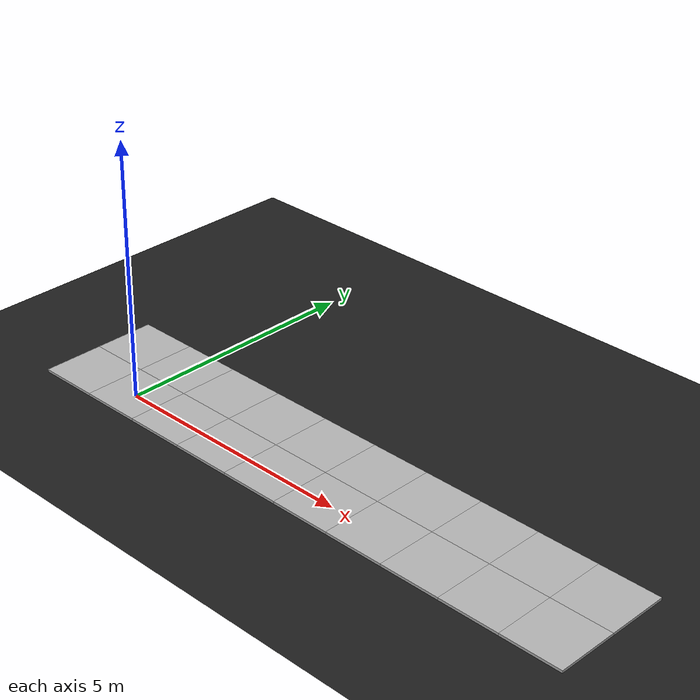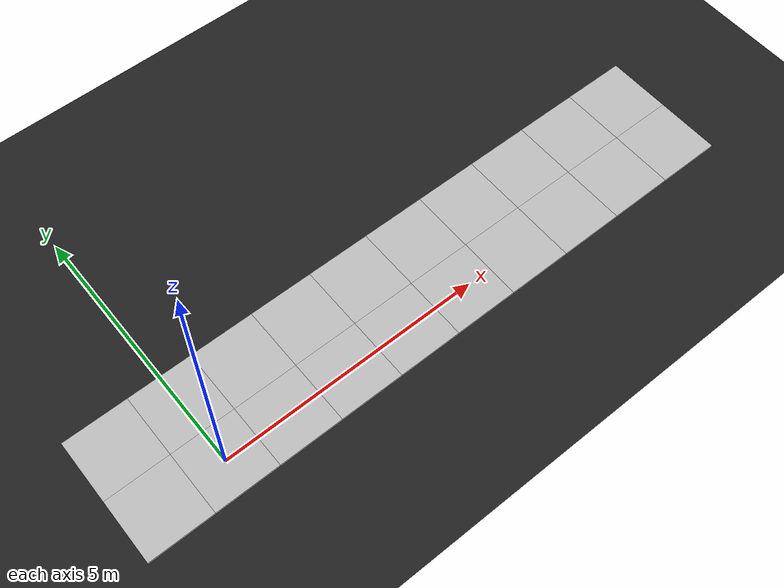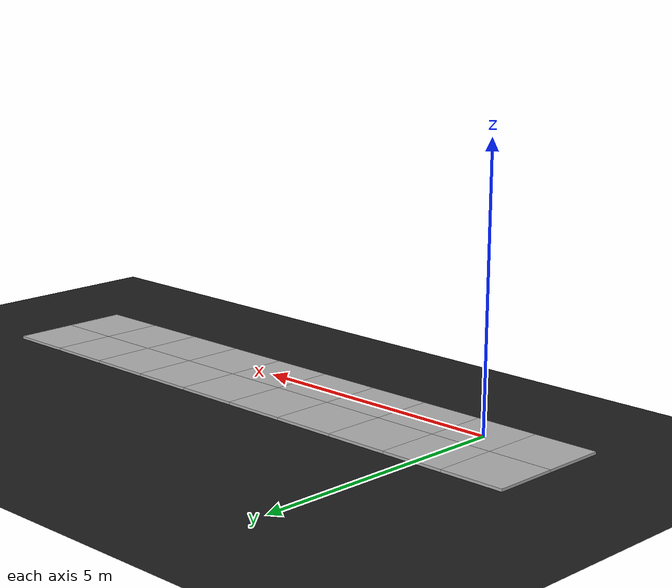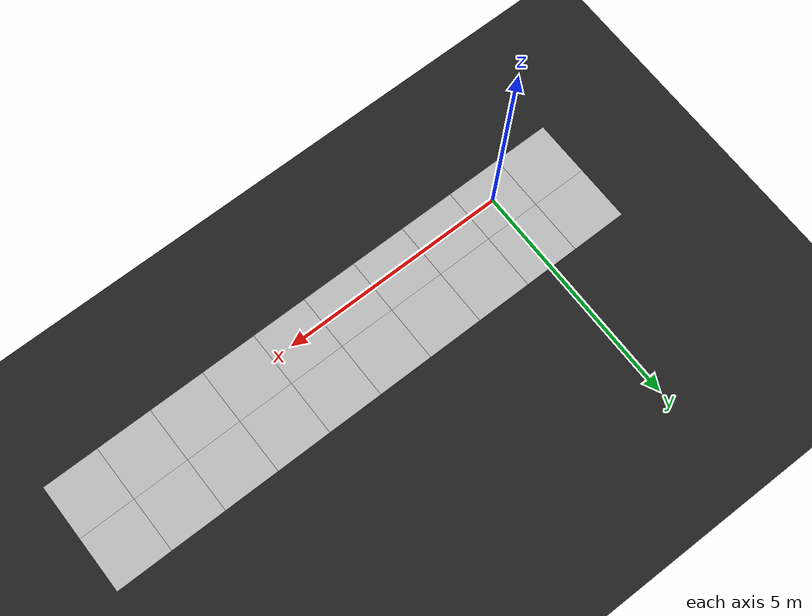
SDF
<?xml version="1.0"?>
<sdf version="1.4">
<world name="raceon_final_race">

  <include>
    <uri>model://sun</uri>
  </include>

  <model name="ground_plane">
    <static>true</static>
    <link name="link">
      <collision name="collision">
        <geometry>
          <plane>
            <normal>0 0 1</normal>
            <size>150 150</size>
          </plane>
        </geometry>
        <surface>
          <friction>
            <ode>
              <mu>100</mu>
              <mu2>50</mu2>
            </ode>
          </friction>
        </surface>
      </collision>
      <visual name="visual">
        <cast_shadows>false</cast_shadows>
        <geometry>
          <plane>
            <normal>0 0 1</normal>
            <size>150 150</size>
          </plane>
        </geometry>
        <material>
          <script>
            <uri>file://media/materials/scripts/gazebo.material</uri>
            <name>Gazebo/FlatBlack</name>
          </script>
        </material>
      </visual>
    </link>
  </model>

  <!-- Track -->
  <include>
    <static>true</static>
    <name>1_1</name>
    <uri>model://racecar_description/models/segment_turn</uri>
    <pose>-1.21 0 0 0 0 -1.57079632679</pose>
  </include>

  <include>
    <static>true</static>
    <name>1_2</name>
    <uri>model://racecar_description/models/segment_straight</uri>
    <pose>0 0 0 0 0 0</pose>
  </include>

  <include>
    <static>true</static>
    <name>1_3</name>
    <uri>model://racecar_description/models/segment_straight</uri>
    <pose>1.21 0 0 0 0 0</pose>
  </include>

  <include>
    <static>true</static>
    <name>1_4</name>
    <uri>model://racecar_description/models/segment_straight</uri>
    <pose>2.42 0 0 0 0 0</pose>
  </include>

  <include>
    <static>true</static>
    <name>1_5</name>
    <uri>model://racecar_description/models/segment_straight</uri>
    <pose>3.63 0 0 0 0 0</pose>
  </include>

  <include>
    <static>true</static>
    <name>1_6</name>
    <uri>model://racecar_description/models/segment_straight</uri>
    <pose>4.84 0 0 0 0 0</pose>
  </include>

  <include>
    <static>true</static>
    <name>1_7</name>
    <uri>model://racecar_description/models/segment_straight</uri>
    <pose>6.05 0 0 0 0 0</pose>
  </include>

  <include>
    <static>true</static>
    <name>1_8</name>
    <uri>model://racecar_description/models/segment_straight</uri>
    <pose>7.26 0 0 0 0 0</pose>
  </include>

  <include>
    <static>true</static>
    <name>1_9</name>
    <uri>model://racecar_description/models/segment_straight</uri>
    <pose>8.47 0 0 0 0 0</pose>
  </include>

  <include>
    <static>true</static>
    <name>1_10</name>
    <uri>model://racecar_description/models/segment_turn</uri>
    <pose>9.68 0 0 0 0 0</pose>
  </include>

  <include>
    <static>true</static>
    <name>2_1</name>
    <uri>model://racecar_description/models/segment_turn</uri>
    <pose>-1.21 1.21 0 0 0 3.14159265359</pose>
  </include>

  <include>
    <static>true</static>
    <name>2_2</name>
    <uri>model://racecar_description/models/segment_straight</uri>
    <pose>0 1.21 0 0 0 0</pose>
  </include>

  <include>
    <static>true</static>
    <name>2_3</name>
    <uri>model://racecar_description/models/segment_straight</uri>
    <pose>1.21 1.21 0 0 0 0</pose>
  </include>

  <include>
    <static>true</static>
    <name>2_4</name>
    <uri>model://racecar_description/models/segment_straight</uri>
    <pose>2.42 1.21 0 0 0 0</pose>
  </include>

  <include>
    <static>true</static>
    <name>2_5</name>
    <uri>model://racecar_description/models/segment_straight</uri>
    <pose>3.63 1.21 0 0 0 0</pose>
  </include>

  <include>
    <static>true</static>
    <name>2_6</name>
    <uri>model://racecar_description/models/segment_straight</uri>
    <pose>4.84 1.21 0 0 0 0</pose>
  </include>

  <include>
    <static>true</static>
    <name>2_7</name>
    <uri>model://racecar_description/models/segment_straight</uri>
    <pose>6.05 1.21 0 0 0 0</pose>
  </include>

  <include>
    <static>true</static>
    <name>2_8</name>
    <uri>model://racecar_description/models/segment_straight</uri>
    <pose>7.26 1.21 0 0 0 0</pose>
  </include>

  <include>
    <static>true</static>
    <name>2_9</name>
    <uri>model://racecar_description/models/segment_straight</uri>
    <pose>8.47 1.21 0 0 0 0</pose>
  </include>

  <include>
    <static>true</static>
    <name>2_10</name>
    <uri>model://racecar_description/models/segment_turn</uri>
    <pose>9.68 1.21 0 0 0 1.57079632679</pose>
  </include>

</world>
</sdf>

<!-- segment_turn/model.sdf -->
<sdf version="1.4">
  <model name="segment_turn">
    <link name='link'>
      <inertial>
        <mass>10</mass>
        <inertia>
          <ixx>0.166667</ixx>
          <ixy>0</ixy>
          <ixz>0</ixz>
          <iyy>0.166667</iyy>
          <iyz>0</iyz>
          <izz>0.166667</izz>
        </inertia>
        <pose frame=''>0 0 0 0 -0 0</pose>
      </inertial>
      <pose frame=''>0 0 0.025 0 -0 0</pose>
      <gravity>1</gravity>
      <self_collide>0</self_collide>
      <kinematic>0</kinematic>
      <enable_wind>0</enable_wind>
      <visual name='visual'>
        <pose frame=''>0 0 0 0 -0 0</pose>
        <geometry>
          <box>
            <size>1.21 1.21 0.05</size>
          </box>
        </geometry>
        <material>
          <lighting>1</lighting>
          <script>
              <uri>model://racecar_description/models/segment_turn/materials/scripts/segment_turn.material</uri>
            <name>SegmentTurn/Image</name>
          </script>
          <shader type='vertex'>
            <normal_map>__default__</normal_map>
          </shader>
          <ambient>0.3 0.3 0.3 1</ambient>
          <diffuse>0.7 0.7 0.7 1</diffuse>
          <specular>0.01 0.01 0.01 1</specular>
          <emissive>0 0 0 1</emissive>
        </material>
        <transparency>0</transparency>
        <cast_shadows>1</cast_shadows>
      </visual>
      <collision name='collision'>
        <laser_retro>0</laser_retro>
        <max_contacts>10</max_contacts>
        <pose frame=''>0 0 0 0 -0 0</pose>
        <geometry>
          <box>
            <size>1.21 1.21 0.05</size>
          </box>
        </geometry>
      </collision>
    </link>
    <static>1</static>
    <allow_auto_disable>1</allow_auto_disable>
  </model>
</sdf>

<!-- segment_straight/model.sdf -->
<sdf version="1.4">
  <model name="segment_straight">
    <link name='link'>
      <inertial>
        <mass>10</mass>
        <inertia>
          <ixx>0.166667</ixx>
          <ixy>0</ixy>
          <ixz>0</ixz>
          <iyy>0.166667</iyy>
          <iyz>0</iyz>
          <izz>0.166667</izz>
        </inertia>
        <pose frame=''>0 0 0 0 -0 0</pose>
      </inertial>
      <pose frame=''>0 0 0.025 0 -0 0</pose>
      <gravity>1</gravity>
      <self_collide>0</self_collide>
      <kinematic>0</kinematic>
      <enable_wind>0</enable_wind>
      <visual name='visual'>
        <pose frame=''>0 0 0 0 -0 0</pose>
        <geometry>
          <box>
            <size>1.21 1.21 0.05</size>
          </box>
        </geometry>
        <material>
          <lighting>1</lighting>
          <script>
            <uri>model://racecar_description/models/segment_straight/materials/scripts/segment_straight.material</uri>
            <name>SegmentStraight/Image</name>
          </script>
          <shader type='vertex'>
            <normal_map>__default__</normal_map>
          </shader>
          <ambient>0.3 0.3 0.3 1</ambient>
          <diffuse>0.7 0.7 0.7 1</diffuse>
          <specular>0.01 0.01 0.01 1</specular>
          <emissive>0 0 0 1</emissive>
        </material>
        <transparency>0</transparency>
        <cast_shadows>1</cast_shadows>
      </visual>
      <collision name='collision'>
        <laser_retro>0</laser_retro>
        <max_contacts>10</max_contacts>
        <pose frame=''>0 0 0 0 -0 0</pose>
        <geometry>
          <box>
            <size>1.21 1.21 0.05</size>
          </box>
        </geometry>
      </collision>
    </link>
    <static>1</static>
    <allow_auto_disable>1</allow_auto_disable>
  </model>
</sdf>
